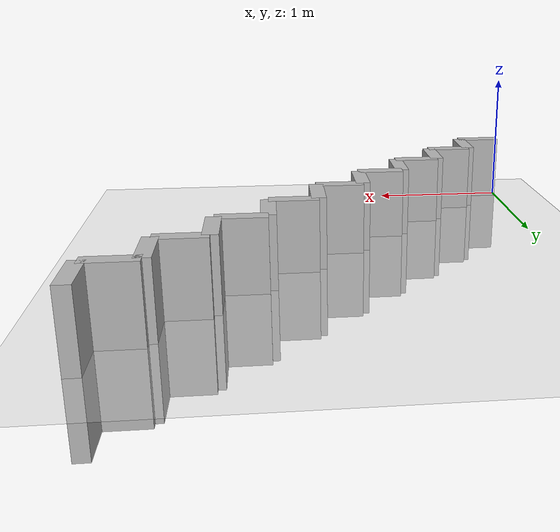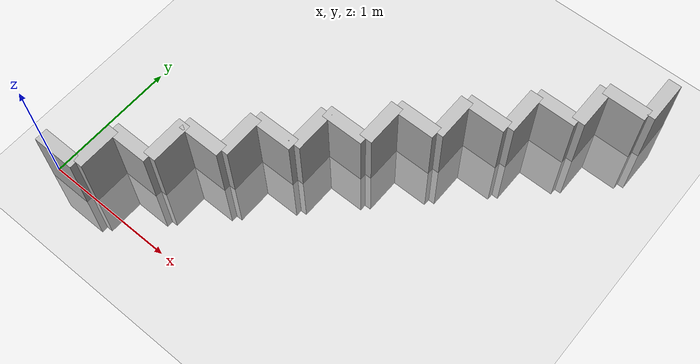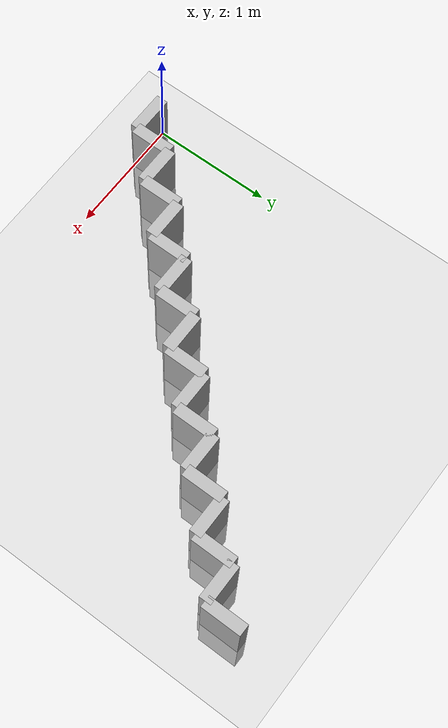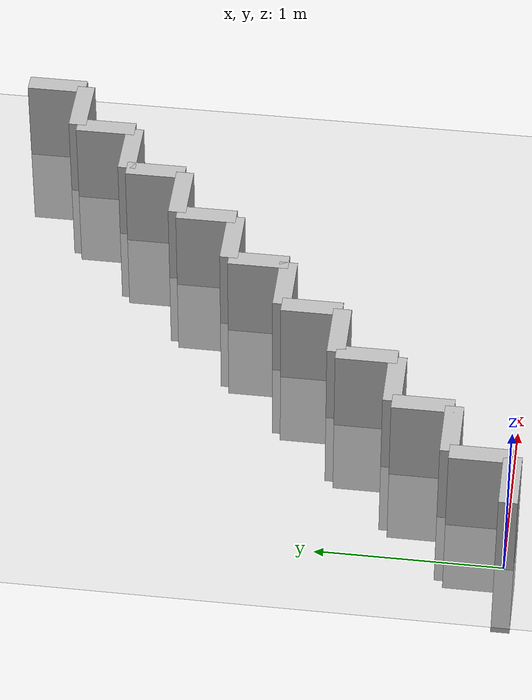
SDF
<?xml version="1.0" ?>
<sdf version="1.6">
  <world name="default">
    <include>
      <uri>model://ground_plane</uri>
    </include>
    <include>
      <uri>model://sun</uri>
    </include>

    <model name="wall_0">
      <static>true</static>
      <link name="link">
        <pose>0.16666666666666666 0 0 0 0 0</pose>
        <collision name="collision">
          <geometry>
            <box>
              <size>0.3333333333333333 0.1 1.0</size>
            </box>
          </geometry>
        </collision>
        <visual name="visual">
          <geometry>
            <box>
              <size>0.3333333333333333 0.1 1.0</size>
            </box>
          </geometry>
        </visual>
      </link>
    </model>

    <model name="wall_1">
      <static>true</static>
      <link name="link">
        <pose>0.3333333333333333 0.16666666666666666 0 0 0 1.57</pose>
        <collision name="collision">
          <geometry>
            <box>
              <size>0.3333333333333333 0.1 1.0</size>
            </box>
          </geometry>
        </collision>
        <visual name="visual">
          <geometry>
            <box>
              <size>0.3333333333333333 0.1 1.0</size>
            </box>
          </geometry>
        </visual>
      </link>
    </model>

    <model name="wall_2">
      <static>true</static>
      <link name="link">
        <pose>0.5 0.3333333333333333 0 0 0 0</pose>
        <collision name="collision">
          <geometry>
            <box>
              <size>0.3333333333333333 0.1 1.0</size>
            </box>
          </geometry>
        </collision>
        <visual name="visual">
          <geometry>
            <box>
              <size>0.3333333333333333 0.1 1.0</size>
            </box>
          </geometry>
        </visual>
      </link>
    </model>

    <model name="wall_3">
      <static>true</static>
      <link name="link">
        <pose>0.6666666666666666 0.5 0 0 0 1.57</pose>
        <collision name="collision">
          <geometry>
            <box>
              <size>0.3333333333333333 0.1 1.0</size>
            </box>
          </geometry>
        </collision>
        <visual name="visual">
          <geometry>
            <box>
              <size>0.3333333333333333 0.1 1.0</size>
            </box>
          </geometry>
        </visual>
      </link>
    </model>

    <model name="wall_4">
      <static>true</static>
      <link name="link">
        <pose>0.8333333333333333 0.6666666666666666 0 0 0 0</pose>
        <collision name="collision">
          <geometry>
            <box>
              <size>0.3333333333333333 0.1 1.0</size>
            </box>
          </geometry>
        </collision>
        <visual name="visual">
          <geometry>
            <box>
              <size>0.3333333333333333 0.1 1.0</size>
            </box>
          </geometry>
        </visual>
      </link>
    </model>

    <model name="wall_5">
      <static>true</static>
      <link name="link">
        <pose>0.9999999999999999 0.8333333333333333 0 0 0 1.57</pose>
        <collision name="collision">
          <geometry>
            <box>
              <size>0.3333333333333333 0.1 1.0</size>
            </box>
          </geometry>
        </collision>
        <visual name="visual">
          <geometry>
            <box>
              <size>0.3333333333333333 0.1 1.0</size>
            </box>
          </geometry>
        </visual>
      </link>
    </model>

    <model name="wall_6">
      <static>true</static>
      <link name="link">
        <pose>1.1666666666666665 0.9999999999999999 0 0 0 0</pose>
        <collision name="collision">
          <geometry>
            <box>
              <size>0.3333333333333333 0.1 1.0</size>
            </box>
          </geometry>
        </collision>
        <visual name="visual">
          <geometry>
            <box>
              <size>0.3333333333333333 0.1 1.0</size>
            </box>
          </geometry>
        </visual>
      </link>
    </model>

    <model name="wall_7">
      <static>true</static>
      <link name="link">
        <pose>1.3333333333333333 1.1666666666666665 0 0 0 1.57</pose>
        <collision name="collision">
          <geometry>
            <box>
              <size>0.3333333333333333 0.1 1.0</size>
            </box>
          </geometry>
        </collision>
        <visual name="visual">
          <geometry>
            <box>
              <size>0.3333333333333333 0.1 1.0</size>
            </box>
          </geometry>
        </visual>
      </link>
    </model>

    <model name="wall_8">
      <static>true</static>
      <link name="link">
        <pose>1.5 1.3333333333333333 0 0 0 0</pose>
        <collision name="collision">
          <geometry>
            <box>
              <size>0.3333333333333333 0.1 1.0</size>
            </box>
          </geometry>
        </collision>
        <visual name="visual">
          <geometry>
            <box>
              <size>0.3333333333333333 0.1 1.0</size>
            </box>
          </geometry>
        </visual>
      </link>
    </model>

    <model name="wall_9">
      <static>true</static>
      <link name="link">
        <pose>1.6666666666666667 1.5 0 0 0 1.57</pose>
        <collision name="collision">
          <geometry>
            <box>
              <size>0.3333333333333333 0.1 1.0</size>
            </box>
          </geometry>
        </collision>
        <visual name="visual">
          <geometry>
            <box>
              <size>0.3333333333333333 0.1 1.0</size>
            </box>
          </geometry>
        </visual>
      </link>
    </model>

    <model name="wall_10">
      <static>true</static>
      <link name="link">
        <pose>1.8333333333333335 1.6666666666666667 0 0 0 0</pose>
        <collision name="collision">
          <geometry>
            <box>
              <size>0.3333333333333333 0.1 1.0</size>
            </box>
          </geometry>
        </collision>
        <visual name="visual">
          <geometry>
            <box>
              <size>0.3333333333333333 0.1 1.0</size>
            </box>
          </geometry>
        </visual>
      </link>
    </model>

    <model name="wall_11">
      <static>true</static>
      <link name="link">
        <pose>2.0 1.8333333333333335 0 0 0 1.57</pose>
        <collision name="collision">
          <geometry>
            <box>
              <size>0.3333333333333333 0.1 1.0</size>
            </box>
          </geometry>
        </collision>
        <visual name="visual">
          <geometry>
            <box>
              <size>0.3333333333333333 0.1 1.0</size>
            </box>
          </geometry>
        </visual>
      </link>
    </model>

    <model name="wall_12">
      <static>true</static>
      <link name="link">
        <pose>2.1666666666666665 2.0 0 0 0 0</pose>
        <collision name="collision">
          <geometry>
            <box>
              <size>0.3333333333333333 0.1 1.0</size>
            </box>
          </geometry>
        </collision>
        <visual name="visual">
          <geometry>
            <box>
              <size>0.3333333333333333 0.1 1.0</size>
            </box>
          </geometry>
        </visual>
      </link>
    </model>

    <model name="wall_13">
      <static>true</static>
      <link name="link">
        <pose>2.333333333333333 2.1666666666666665 0 0 0 1.57</pose>
        <collision name="collision">
          <geometry>
            <box>
              <size>0.3333333333333333 0.1 1.0</size>
            </box>
          </geometry>
        </collision>
        <visual name="visual">
          <geometry>
            <box>
              <size>0.3333333333333333 0.1 1.0</size>
            </box>
          </geometry>
        </visual>
      </link>
    </model>

    <model name="wall_14">
      <static>true</static>
      <link name="link">
        <pose>2.4999999999999996 2.333333333333333 0 0 0 0</pose>
        <collision name="collision">
          <geometry>
            <box>
              <size>0.3333333333333333 0.1 1.0</size>
            </box>
          </geometry>
        </collision>
        <visual name="visual">
          <geometry>
            <box>
              <size>0.3333333333333333 0.1 1.0</size>
            </box>
          </geometry>
        </visual>
      </link>
    </model>

    <model name="wall_15">
      <static>true</static>
      <link name="link">
        <pose>2.666666666666666 2.4999999999999996 0 0 0 1.57</pose>
        <collision name="collision">
          <geometry>
            <box>
              <size>0.3333333333333333 0.1 1.0</size>
            </box>
          </geometry>
        </collision>
        <visual name="visual">
          <geometry>
            <box>
              <size>0.3333333333333333 0.1 1.0</size>
            </box>
          </geometry>
        </visual>
      </link>
    </model>

    <model name="wall_16">
      <static>true</static>
      <link name="link">
        <pose>2.8333333333333326 2.666666666666666 0 0 0 0</pose>
        <collision name="collision">
          <geometry>
            <box>
              <size>0.3333333333333333 0.1 1.0</size>
            </box>
          </geometry>
        </collision>
        <visual name="visual">
          <geometry>
            <box>
              <size>0.3333333333333333 0.1 1.0</size>
            </box>
          </geometry>
        </visual>
      </link>
    </model>

    <model name="wall_17">
      <static>true</static>
      <link name="link">
        <pose>2.999999999999999 2.8333333333333326 0 0 0 1.57</pose>
        <collision name="collision">
          <geometry>
            <box>
              <size>0.3333333333333333 0.1 1.0</size>
            </box>
          </geometry>
        </collision>
        <visual name="visual">
          <geometry>
            <box>
              <size>0.3333333333333333 0.1 1.0</size>
            </box>
          </geometry>
        </visual>
      </link>
    </model>

  </world>
</sdf>
